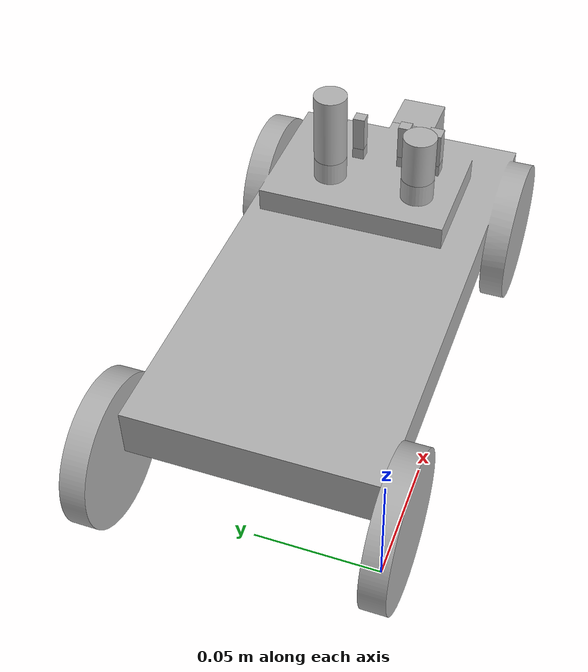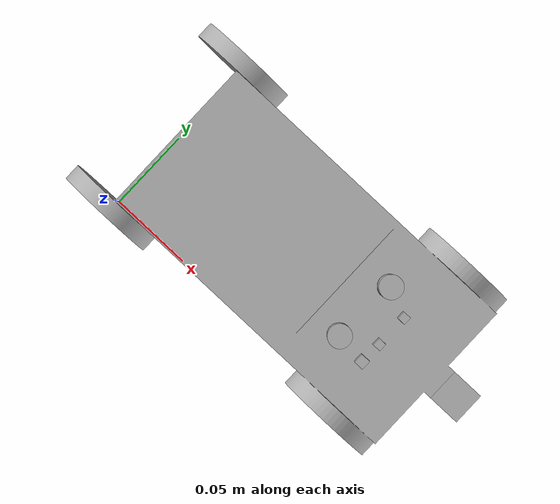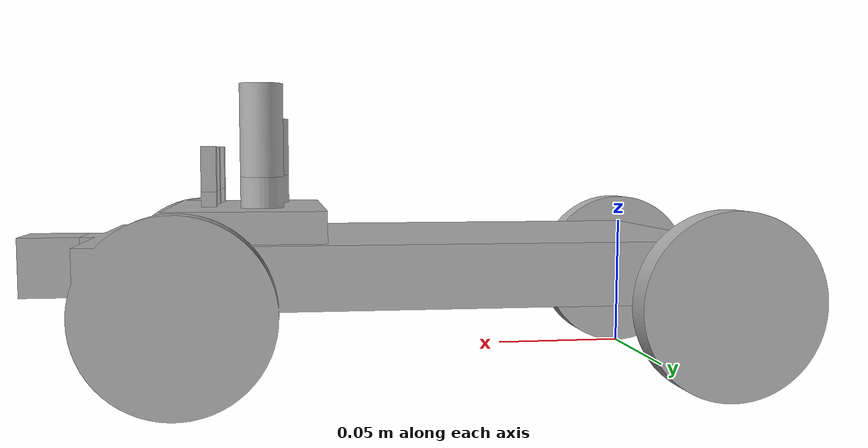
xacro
<?xml version="1.0" ?>
<robot name="s1100810" xmlns:xacro="http://www.ros.org/wiki/xacro">

<xacro:include filename="$(find s1100810_description)/urdf/materials.xacro" />
<xacro:include filename="$(find s1100810_description)/urdf/s1100810.trans" />
<xacro:include filename="$(find s1100810_description)/urdf/s1100810.gazebo" />
<link name="base_link">
  <inertial>
    <origin xyz="0.11259946943080769 0.050395142806376955 0.04024132168106407" rpy="0 0 0"/>
    <mass value="3.941150814336895"/>
    <inertia ixx="0.004488" iyy="0.013531" izz="0.01734" ixy="-5.8e-05" iyz="-2.3e-05" ixz="5.6e-05"/>
  </inertial>
  <visual>
    <origin xyz="0 0 0" rpy="0 0 0"/>
    <geometry>
      <mesh filename="package://s1100810_description/meshes/base_link.stl" scale="0.001 0.001 0.001"/>
    </geometry>
    <material name="silver"/>
  </visual>
  <collision>
    <origin xyz="0 0 0" rpy="0 0 0"/>
    <geometry>
      <mesh filename="package://s1100810_description/meshes/base_link.stl" scale="0.001 0.001 0.001"/>
    </geometry>
  </collision>
</link>

<link name="right_wheel_1">
  <inertial>
    <origin xyz="-4.440892098500626e-18 -0.005000000000000001 1.734723475976807e-17" rpy="0 0 0"/>
    <mass value="0.2219535209761188"/>
    <inertia ixx="5.2e-05" iyy="0.0001" izz="5.2e-05" ixy="0.0" iyz="-0.0" ixz="-0.0"/>
  </inertial>
  <visual>
    <origin xyz="-0.0 -0.0 -0.03" rpy="0 0 0"/>
    <geometry>
      <mesh filename="package://s1100810_description/meshes/right_wheel_1.stl" scale="0.001 0.001 0.001"/>
    </geometry>
    <material name="silver"/>
  </visual>
  <collision>
    <origin xyz="-0.0 -0.0 -0.03" rpy="0 0 0"/>
    <geometry>
      <mesh filename="package://s1100810_description/meshes/right_wheel_1.stl" scale="0.001 0.001 0.001"/>
    </geometry>
  </collision>
</link>

<link name="left_wheel_1">
  <inertial>
    <origin xyz="4.440892098500626e-18 0.005000000000000018 6.938893903907228e-18" rpy="0 0 0"/>
    <mass value="0.2219535209761188"/>
    <inertia ixx="5.2e-05" iyy="0.0001" izz="5.2e-05" ixy="0.0" iyz="0.0" ixz="0.0"/>
  </inertial>
  <visual>
    <origin xyz="-0.0 -0.1 -0.03" rpy="0 0 0"/>
    <geometry>
      <mesh filename="package://s1100810_description/meshes/left_wheel_1.stl" scale="0.001 0.001 0.001"/>
    </geometry>
    <material name="silver"/>
  </visual>
  <collision>
    <origin xyz="-0.0 -0.1 -0.03" rpy="0 0 0"/>
    <geometry>
      <mesh filename="package://s1100810_description/meshes/left_wheel_1.stl" scale="0.001 0.001 0.001"/>
    </geometry>
  </collision>
</link>

<link name="Bumper_1">
  <inertial>
    <origin xyz="0.010000000000000009 0.0 0.0" rpy="0 0 0"/>
    <mass value="0.0628"/>
    <inertia ixx="4e-06" iyy="4e-06" izz="4e-06" ixy="0.0" iyz="0.0" ixz="0.0"/>
  </inertial>
  <visual>
    <origin xyz="-0.205 -0.05 -0.04" rpy="0 0 0"/>
    <geometry>
      <mesh filename="package://s1100810_description/meshes/Bumper_1.stl" scale="0.001 0.001 0.001"/>
    </geometry>
    <material name="silver"/>
  </visual>
  <collision>
    <origin xyz="-0.205 -0.05 -0.04" rpy="0 0 0"/>
    <geometry>
      <mesh filename="package://s1100810_description/meshes/Bumper_1.stl" scale="0.001 0.001 0.001"/>
    </geometry>
  </collision>
</link>

<link name="Lidar_1">
  <inertial>
    <origin xyz="2.4139881205087477e-09 4.32133672595425e-10 0.007499999999999993" rpy="0 0 0"/>
    <mass value="0.004239000126332045"/>
    <inertia ixx="0.0" iyy="0.0" izz="0.0" ixy="-0.0" iyz="-0.0" ixz="0.0"/>
  </inertial>
  <visual>
    <origin xyz="-0.162 -0.029 -0.065" rpy="0 0 0"/>
    <geometry>
      <mesh filename="package://s1100810_description/meshes/Lidar_1.stl" scale="0.001 0.001 0.001"/>
    </geometry>
    <material name="silver"/>
  </visual>
  <collision>
    <origin xyz="-0.162 -0.029 -0.065" rpy="0 0 0"/>
    <geometry>
      <mesh filename="package://s1100810_description/meshes/Lidar_1.stl" scale="0.001 0.001 0.001"/>
    </geometry>
  </collision>
</link>

<link name="Depth_Camera_1">
  <inertial>
    <origin xyz="2.421438688449129e-09 6.332993504609696e-10 0.007499999999999993" rpy="0 0 0"/>
    <mass value="0.0029437500877305873"/>
    <inertia ixx="0.0" iyy="0.0" izz="0.0" ixy="-0.0" iyz="-0.0" ixz="0.0"/>
  </inertial>
  <visual>
    <origin xyz="-0.1625 -0.0425 -0.065" rpy="0 0 0"/>
    <geometry>
      <mesh filename="package://s1100810_description/meshes/Depth_Camera_1.stl" scale="0.001 0.001 0.001"/>
    </geometry>
    <material name="silver"/>
  </visual>
  <collision>
    <origin xyz="-0.1625 -0.0425 -0.065" rpy="0 0 0"/>
    <geometry>
      <mesh filename="package://s1100810_description/meshes/Depth_Camera_1.stl" scale="0.001 0.001 0.001"/>
    </geometry>
  </collision>
</link>

<link name="Camera_1">
  <inertial>
    <origin xyz="2.421438688449129e-09 9.313225746154785e-10 0.007499999999999993" rpy="0 0 0"/>
    <mass value="0.0029437500877305873"/>
    <inertia ixx="0.0" iyy="0.0" izz="0.0" ixy="-0.0" iyz="-0.0" ixz="0.0"/>
  </inertial>
  <visual>
    <origin xyz="-0.1625 -0.0625 -0.065" rpy="0 0 0"/>
    <geometry>
      <mesh filename="package://s1100810_description/meshes/Camera_1.stl" scale="0.001 0.001 0.001"/>
    </geometry>
    <material name="silver"/>
  </visual>
  <collision>
    <origin xyz="-0.1625 -0.0625 -0.065" rpy="0 0 0"/>
    <geometry>
      <mesh filename="package://s1100810_description/meshes/Camera_1.stl" scale="0.001 0.001 0.001"/>
    </geometry>
  </collision>
</link>

<link name="IMU_1">
  <inertial>
    <origin xyz="2.1315980369696064e-09 4.619359963986547e-10 0.010000000000000106" rpy="0 0 0"/>
    <mass value="0.024168272284065834"/>
    <inertia ixx="1e-06" iyy="1e-06" izz="1e-06" ixy="0.0" iyz="0.0" ixz="0.0"/>
  </inertial>
  <visual>
    <origin xyz="-0.143 -0.031 -0.07" rpy="0 0 0"/>
    <geometry>
      <mesh filename="package://s1100810_description/meshes/IMU_1.stl" scale="0.001 0.001 0.001"/>
    </geometry>
    <material name="silver"/>
  </visual>
  <collision>
    <origin xyz="-0.143 -0.031 -0.07" rpy="0 0 0"/>
    <geometry>
      <mesh filename="package://s1100810_description/meshes/IMU_1.stl" scale="0.001 0.001 0.001"/>
    </geometry>
  </collision>
</link>

<link name="GPS_1">
  <inertial>
    <origin xyz="0.0 1.3877787807814457e-17 0.015" rpy="0 0 0"/>
    <mass value="0.036252408426099524"/>
    <inertia ixx="3e-06" iyy="3e-06" izz="1e-06" ixy="0.0" iyz="0.0" ixz="0.0"/>
  </inertial>
  <visual>
    <origin xyz="-0.145 -0.07 -0.07" rpy="0 0 0"/>
    <geometry>
      <mesh filename="package://s1100810_description/meshes/GPS_1.stl" scale="0.001 0.001 0.001"/>
    </geometry>
    <material name="silver"/>
  </visual>
  <collision>
    <origin xyz="-0.145 -0.07 -0.07" rpy="0 0 0"/>
    <geometry>
      <mesh filename="package://s1100810_description/meshes/GPS_1.stl" scale="0.001 0.001 0.001"/>
    </geometry>
  </collision>
</link>

<joint name="Revolute 1" type="continuous">
  <origin xyz="0.0 0.0 0.03" rpy="0 0 0"/>
  <parent link="base_link"/>
  <child link="right_wheel_1"/>
  <axis xyz="0.0 1.0 0.0"/>
</joint>

<joint name="Revolute 2" type="continuous">
  <origin xyz="0.0 0.1 0.03" rpy="0 0 0"/>
  <parent link="base_link"/>
  <child link="left_wheel_1"/>
  <axis xyz="0.0 -1.0 0.0"/>
</joint>

<joint name="Rigid 3" type="fixed">
  <origin xyz="0.205 0.05 0.04" rpy="0 0 0"/>
  <parent link="base_link"/>
  <child link="Bumper_1"/>
</joint>

<joint name="Rigid 4" type="fixed">
  <origin xyz="0.162 0.029 0.065" rpy="0 0 0"/>
  <parent link="base_link"/>
  <child link="Lidar_1"/>
</joint>

<joint name="Rigid 5" type="fixed">
  <origin xyz="0.1625 0.0425 0.065" rpy="0 0 0"/>
  <parent link="base_link"/>
  <child link="Depth_Camera_1"/>
</joint>

<joint name="Rigid 6" type="fixed">
  <origin xyz="0.1625 0.0625 0.065" rpy="0 0 0"/>
  <parent link="base_link"/>
  <child link="Camera_1"/>
</joint>

<joint name="Rigid 7" type="fixed">
  <origin xyz="0.143 0.031 0.07" rpy="0 0 0"/>
  <parent link="base_link"/>
  <child link="IMU_1"/>
</joint>

<joint name="Rigid 8" type="fixed">
  <origin xyz="0.145 0.07 0.07" rpy="0 0 0"/>
  <parent link="base_link"/>
  <child link="GPS_1"/>
</joint>

</robot>

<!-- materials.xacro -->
<robot name="s1100810" xmlns:xacro="http://www.ros.org/wiki/xacro" >

<material name="silver">
  <color rgba="0.700 0.700 0.700 1.000"/>
</material>

</robot>

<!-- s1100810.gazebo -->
<robot name="s1100810"
  xmlns:xacro="http://www.ros.org/wiki/xacro">

  <xacro:property name="body_color" value="Gazebo/Silver" />

  <gazebo>
    <plugin name="control" filename="libgazebo_ros_control.so"/>
  </gazebo>
  <gazebo reference="base_link">
    <material>${body_color}</material>
    <mu1>0.2</mu1>
    <mu2>0.2</mu2>
    <selfCollide>true</selfCollide>
    <gravity>true</gravity>
  </gazebo>

  <gazebo reference="left_wheel_1">
    <material>${body_color}</material>
    <mu1>0.2</mu1>
    <mu2>0.2</mu2>
    <selfCollide>true</selfCollide>
  </gazebo>

  <gazebo reference="right_wheel_1">
    <material>${body_color}</material>
    <mu1>0.2</mu1>
    <mu2>0.2</mu2>
    <selfCollide>true</selfCollide>
  </gazebo>

  <gazebo reference="Bumper_1">
    <material>${body_color}</material>
    <mu1>0.2</mu1>
    <mu2>0.2</mu2>
    <selfCollide>true</selfCollide>
    <sensor name="Bumper_sensor" type="contact">
      <always_on>true</always_on>
      <update_rate>50</update_rate>
      <contact>
        <collision>Bumper_1_collision</collision>
      </contact>
      <plugin name="gazebo_ros_bumper" filename="libgazebo_ros_bumper.so">
        <bumperTopicName>/bumper_states</bumperTopicName>
        <frameName>Bumper_1</frameName>
      </plugin>
    </sensor>
  </gazebo>

  <gazebo reference="Lidar_1">
    <material>${body_color}</material>
    <mu1>0.2</mu1>
    <mu2>0.2</mu2>
    <selfCollide>true</selfCollide>
    <sensor name="Lidar_sensor" type="ray">
      <pose>0 0 0 0 0 0</pose>
      <update_rate>20</update_rate>
      <ray>
        <scan>
          <horizontal>
            <samples>360</samples>
            <resolution>1</resolution>
            <min_angle>-1.5708</min_angle>
            <max_angle>1.5708</max_angle>
          </horizontal>
        </scan>
        <range>
          <min>0.12</min>
          <max>10.0</max>
          <resolution>0.01</resolution>
        </range>
      </ray>

      <plugin name="gazebo_ros_laser" filename="libgazebo_ros_laser.so">
        <topicName>/scan</topicName>
        <frameName>Lidar_1</frameName>
      </plugin>
    </sensor>
  </gazebo>

  <gazebo reference="Depth_Camera_1">
    <material>${body_color}</material>
    <mu1>0.2</mu1>
    <mu2>0.2</mu2>
    <selfCollide>true</selfCollide>
    <sensor name="Depth_Camera_sensor" type="depth">
      <update_rate>20.0</update_rate>
      <camera>
        <horizontal_fov>1.047</horizontal_fov>
        <image>
          <width>640</width>
          <height>480</height>
          <format>R8G8B8</format>
        </image>
        <clip>
          <near>0.1</near>
          <far>100</far>
        </clip>
      </camera>
      <plugin name="gazebo_ros_openni_kinect" filename="libgazebo_ros_openni_kinect.so">
        <imageTopicName>/depth_camera/color/image_raw</imageTopicName>
        <cameraInfoTopicName>/depth_camera/color/camera_info</cameraInfoTopicName>
        <depthImageTopicName>/depth_camera/depth/image_raw</depthImageTopicName>
        <depthImageCameraInfoTopicName>/depth_camera/depth/camera_info</depthImageCameraInfoTopicName>
        <pointCloudTopicName>/depth_camera/points</pointCloudTopicName>
        <frameName>Depth_Camera_1</frameName>
        <pointCloudCutoff>0.1</pointCloudCutoff>
      </plugin>
    </sensor>
  </gazebo>

  <gazebo reference="Camera_1">
    <material>${body_color}</material>
    <mu1>0.2</mu1>
    <mu2>0.2</mu2>
    <selfCollide>true</selfCollide>
    <sensor name="Camera_sensor" type="camera">
      <pose>0 0 0 0 0 0</pose>
      <update_rate>30</update_rate>
      <camera>
        <horizontal_fov>1.047</horizontal_fov>
        <image>
          <width>640</width>
          <height>480</height>
          <format>R8G8B8</format>
        </image>
        <clip>
          <near>0.1</near>
          <far>100</far>
        </clip>
      </camera>
      <plugin name="gazebo_ros_camera" filename="libgazebo_ros_camera.so">
        <imageTopicName>/camera/image_raw</imageTopicName>
        <cameraInfoTopicName>/camera/camera_info</cameraInfoTopicName>
        <frameName>Camera_1</frameName>
      </plugin>
    </sensor>
  </gazebo>

  <gazebo reference="IMU_1">
    <material>${body_color}</material>
    <mu1>0.2</mu1>
    <mu2>0.2</mu2>
    <selfCollide>true</selfCollide>
    <sensor name="IMU_sensor" type="imu">
      <always_on>true</always_on>
      <update_rate>100</update_rate>
      <plugin name="gazebo_ros_imu_sensor" filename="libgazebo_ros_imu_sensor.so">
        <topicName>/imu</topicName>
        <bodyName>IMU_1</bodyName>
        <updateRateHZ>100.0</updateRateHZ>
        <gaussianNoise>0.0</gaussianNoise>
        <xyzOffset>0 0 0</xyzOffset>
        <rpyOffset>0 0 0</rpyOffset>
        <frameName>IMU_1</frameName>
        <initialOrientationAsReference>false</initialOrientationAsReference>
      </plugin>
    </sensor>
  </gazebo>

  <gazebo reference="GPS_1">
    <material>${body_color}</material>
    <mu1>0.2</mu1>
    <mu2>0.2</mu2>
    <selfCollide>true</selfCollide>
    <sensor name="GPS_sensor" type="gps">
      <update_rate>10</update_rate>
      <plugin name="gazebo_ros_gps_sensor" filename="libgazebo_ros_gps_sensor.so">
        <topicName>/gps/fix</topicName>
        <frameName>GPS_1</frameName>
      </plugin>
    </sensor>
  </gazebo>

  <gazebo>
    <plugin name="differential_drive_controller" filename="libgazebo_ros_diff_drive.so">
      <updateRate>100</updateRate>
      <leftJoint>Revolute 2</leftJoint>
      <rightJoint>Revolute 1</rightJoint>
      <wheelSeparation>0.2</wheelSeparation>
      <wheelDiameter>0.1</wheelDiameter>
      <wheelAcceleration>1.0</wheelAcceleration>
      <wheelTorque>50</wheelTorque>
      <commandTopic>cmd_vel</commandTopic>
      <odometryTopic>odom</odometryTopic>
      <odometryFrame>odom</odometryFrame>
      <robotBaseFrame>base_link</robotBaseFrame>
      <odometrySource>1</odometrySource>
      <publishWheelTF>true</publishWheelTF>
      <publishOdom>true</publishOdom>
      <publishWheelJointState>true</publishWheelJointState>
      <legacyMode>false</legacyMode>
    </plugin>
  </gazebo>

</robot>
